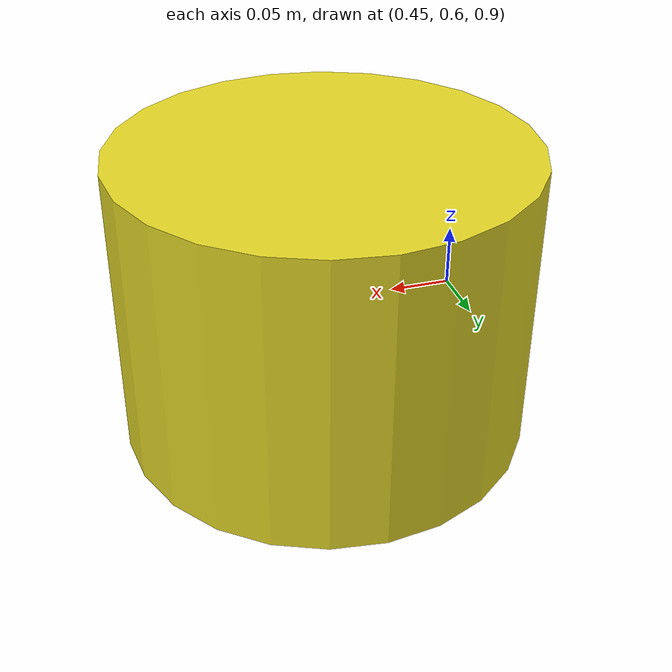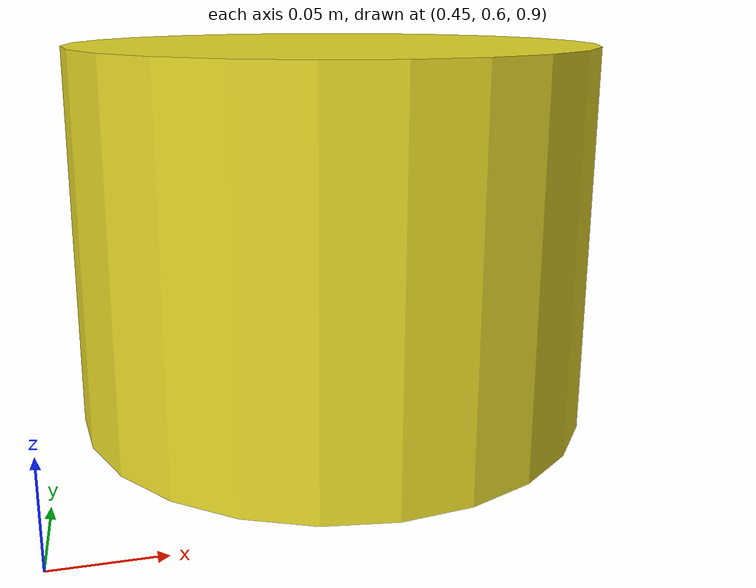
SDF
<?xml version="1.0" ?>
<sdf version='1.6'>

  <model name='cylinder2'>
    <pose frame=''>0.6 0.74 1.0 0 -0 0</pose>
    <allow_auto_disable>0</allow_auto_disable>
    <link name='link'>
      <velocity_decay>
        <linear>0.0005</linear>
        <angular>0.0002</angular>
      </velocity_decay>
      <inertial>
        <mass>0.012</mass>
        <inertia>
          <ixx>0.0001054875</ixx>
          <ixy>0</ixy>
          <ixz>0</ixz>
          <iyy>0.0001054875</iyy>
          <iyz>0</iyz>
          <izz>0.000210975</izz>

        </inertia>
        <pose frame=''>0 0 0 0 -0 0</pose>
      </inertial>
      <collision name='collision'>
        <geometry>
          <cylinder>
            <radius>0.1375</radius>
            <length>0.2</length>
          </cylinder>
        </geometry>
        <max_contacts>1000</max_contacts>
        <surface>
          <contact>
	          <ode>
              <min_depth>0.001</min_depth>
              <max_vel>1</max_vel>

            </ode>
          </contact>

         <friction>
          <ode>
            <mu>6</mu>
            <mu2>6</mu2>
	    <slip1>0</slip1>
            <slip2>0</slip2>

          </ode>
          <torsional>
            <coefficient>1</coefficient>

            <ode>
              <slip>0</slip>
            </ode>
          </torsional>
         </friction>
        </surface>
      </collision>
      <visual name='visual'>
        <geometry>
          <cylinder>
            <radius>0.1375</radius>
            <length>0.2</length>
          </cylinder>
        </geometry>
        <material>
          <script>
            <name>Gazebo/Yellow</name>
            <uri>file://media/materials/scripts/gazebo.material</uri>
          </script>
        </material>
      </visual>
      <self_collide>1</self_collide>
      <enable_wind>0</enable_wind>
      <kinematic>0</kinematic>
    </link>

  </model>

</sdf>
